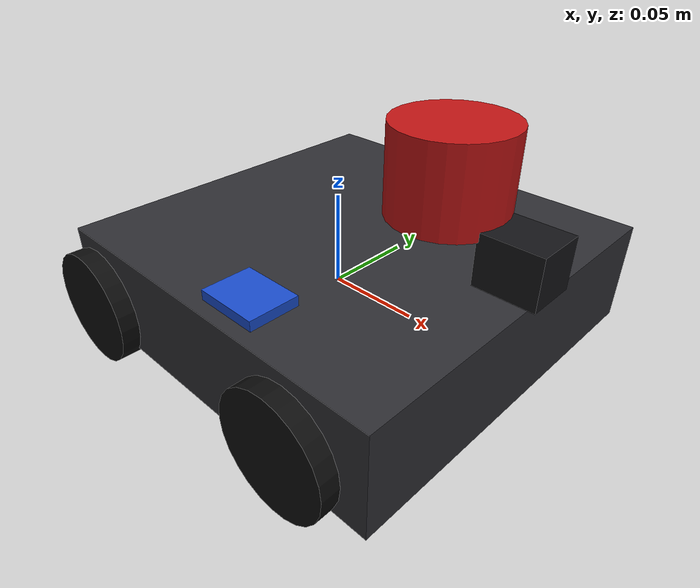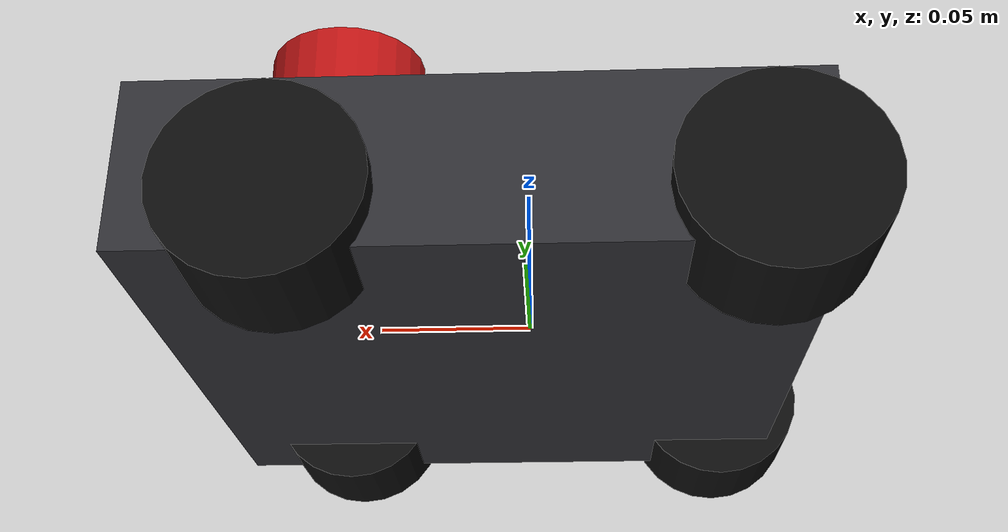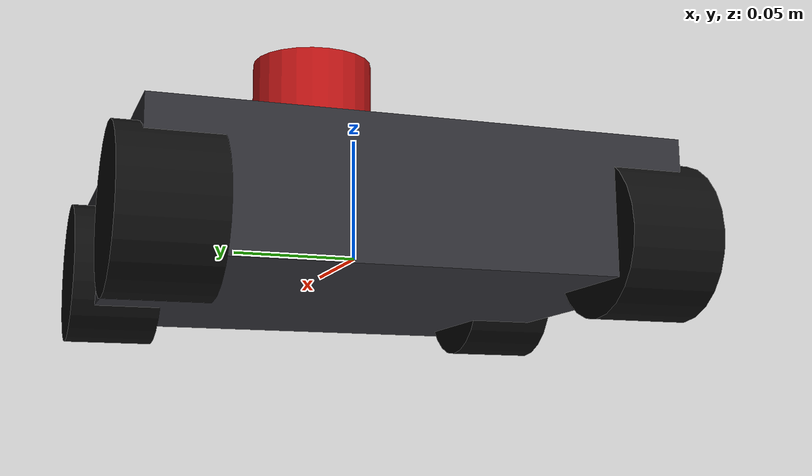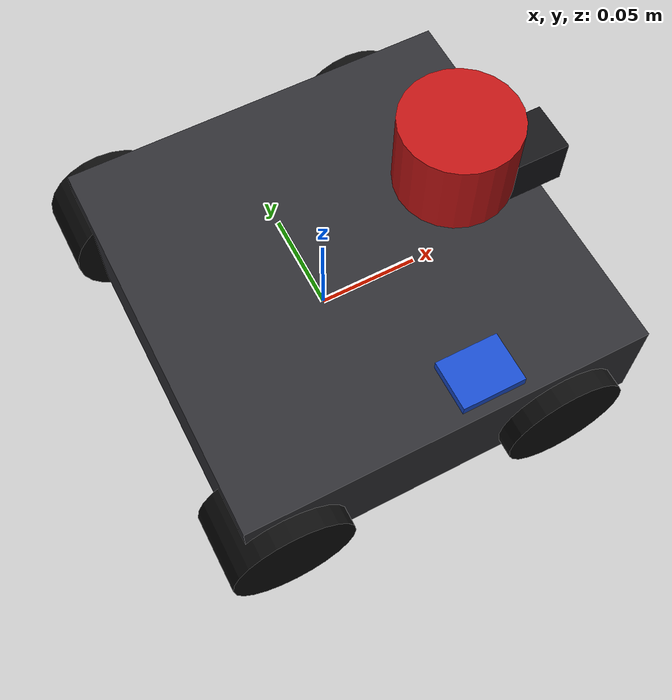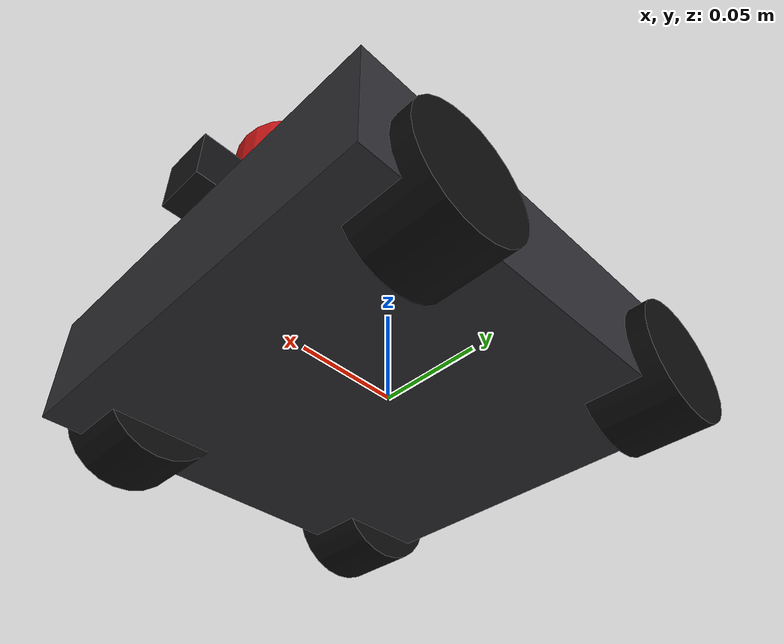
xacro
<?xml version="1.0"?>
<robot name="rover" xmlns:xacro="http://www.ros.org/wiki/xacro">
  <!--
    Dimensions and poses are derived from "malyi rover V1.2.step".
    base_link is centered between the four wheel axles. ROS axes are
    x forward, y left and z up.
  -->
  <xacro:arg name="wheel_radius" default="0.03"/>
  <xacro:arg name="wheel_width" default="0.037"/>
  <xacro:arg name="wheelbase" default="0.13961"/>
  <xacro:arg name="track_width" default="0.181"/>
  <xacro:arg name="simulation" default="false"/>
  <xacro:arg name="right_wheel_axis_y" default="-1"/>
  <xacro:arg name="chassis_length" default="0.2006"/>
  <xacro:arg name="chassis_width" default="0.1990"/>
  <xacro:arg name="chassis_height" default="0.0532"/>
  <xacro:arg name="chassis_x" default="0.0125"/>
  <xacro:arg name="chassis_y" default="0.0"/>
  <xacro:arg name="chassis_z" default="0.0096"/>
  <xacro:arg name="imu_x" default="0.0332"/>
  <xacro:arg name="imu_y" default="-0.0837"/>
  <xacro:arg name="imu_z" default="0.0435"/>
  <xacro:arg name="imu_roll" default="0.0"/>
  <xacro:arg name="imu_pitch" default="0.0"/>
  <xacro:arg name="imu_yaw" default="1.57079632679"/>
  <xacro:arg name="lidar_x" default="0.0662"/>
  <xacro:arg name="lidar_y" default="0.0"/>
  <xacro:arg name="lidar_z" default="0.0837"/>
  <xacro:arg name="lidar_roll" default="0.0"/>
  <xacro:arg name="lidar_pitch" default="0.0"/>
  <xacro:arg name="lidar_yaw" default="0.0"/>
  <xacro:arg name="camera_x" default="0.105"/>
  <xacro:arg name="camera_y" default="0.0"/>
  <xacro:arg name="camera_z" default="0.055"/>
  <xacro:arg name="camera_roll" default="0.0"/>
  <xacro:arg name="camera_pitch" default="0.0"/>
  <xacro:arg name="camera_yaw" default="0.0"/>

  <xacro:property name="r" value="$(arg wheel_radius)"/>
  <xacro:property name="ww" value="$(arg wheel_width)"/>
  <xacro:property name="wb" value="$(arg wheelbase)"/>
  <xacro:property name="tw" value="$(arg track_width)"/>
  <xacro:property name="cl" value="$(arg chassis_length)"/>
  <xacro:property name="cw" value="$(arg chassis_width)"/>
  <xacro:property name="ch" value="$(arg chassis_height)"/>

  <link name="base_link">
    <visual>
      <origin xyz="$(arg chassis_x) $(arg chassis_y) $(arg chassis_z)"/>
      <geometry><box size="${cl} ${cw} ${ch}"/></geometry>
      <material name="dark"><color rgba="0.18 0.18 0.20 1"/></material>
    </visual>
    <collision>
      <origin xyz="$(arg chassis_x) $(arg chassis_y) $(arg chassis_z)"/>
      <geometry><box size="${cl} ${cw} ${ch}"/></geometry>
    </collision>
    <inertial>
      <mass value="3.0"/>
      <origin xyz="$(arg chassis_x) $(arg chassis_y) $(arg chassis_z)"/>
      <inertia ixx="0.0106" ixy="0" ixz="0" iyy="0.0108" iyz="0" izz="0.0200"/>
    </inertial>
  </link>

  <xacro:macro name="wheel" params="name x y axis_y">
    <link name="${name}_wheel_link">
      <visual>
        <origin rpy="1.57079632679 0 0"/>
        <geometry><cylinder radius="${r}" length="${ww}"/></geometry>
        <material name="rubber"><color rgba="0.05 0.05 0.05 1"/></material>
      </visual>
      <collision>
        <xacro:if value="$(arg simulation)">
          <!-- The directed friction model needs a point-like contact patch. -->
          <geometry><sphere radius="${r}"/></geometry>
        </xacro:if>
        <xacro:unless value="$(arg simulation)">
          <origin rpy="1.57079632679 0 0"/>
          <geometry><cylinder radius="${r}" length="${ww}"/></geometry>
        </xacro:unless>
      </collision>
      <inertial>
        <mass value="0.15"/>
        <inertia ixx="0.000051" ixy="0" ixz="0" iyy="0.000068" iyz="0" izz="0.000051"/>
      </inertial>
    </link>
    <joint name="${name}_wheel_joint" type="continuous">
      <parent link="base_link"/>
      <child link="${name}_wheel_link"/>
      <origin xyz="${x} ${y} 0"/>
      <axis xyz="0 ${axis_y} 0"/>
    </joint>
  </xacro:macro>

  <xacro:wheel name="front_left"  x="${ wb/2}" y="${ tw/2}" axis_y="1"/>
  <xacro:wheel name="front_right" x="${ wb/2}" y="${-tw/2}" axis_y="$(arg right_wheel_axis_y)"/>
  <xacro:wheel name="rear_left"   x="${-wb/2}" y="${ tw/2}" axis_y="1"/>
  <xacro:wheel name="rear_right"  x="${-wb/2}" y="${-tw/2}" axis_y="$(arg right_wheel_axis_y)"/>

  <link name="imu_link">
    <visual>
      <geometry><box size="0.0246 0.0310 0.0049"/></geometry>
      <material name="imu_blue"><color rgba="0.1 0.3 0.8 1"/></material>
    </visual>
    <collision>
      <geometry><box size="0.0246 0.0310 0.0049"/></geometry>
    </collision>
    <inertial>
      <mass value="0.015"/>
      <inertia ixx="0.00000123" ixy="0" ixz="0"
               iyy="0.00000079" iyz="0" izz="0.00000196"/>
    </inertial>
  </link>
  <joint name="imu_joint" type="fixed">
    <parent link="base_link"/>
    <child link="imu_link"/>
    <origin xyz="$(arg imu_x) $(arg imu_y) $(arg imu_z)"
            rpy="$(arg imu_roll) $(arg imu_pitch) $(arg imu_yaw)"/>
  </joint>

  <link name="lidar_link">
    <visual>
      <geometry><cylinder radius="0.028" length="0.0414"/></geometry>
      <material name="lidar_red"><color rgba="0.75 0.08 0.08 1"/></material>
    </visual>
    <collision>
      <geometry><cylinder radius="0.028" length="0.0414"/></geometry>
    </collision>
    <inertial>
      <mass value="0.17"/>
      <inertia ixx="0.000057" ixy="0" ixz="0"
               iyy="0.000057" iyz="0" izz="0.000067"/>
    </inertial>
  </link>
  <joint name="lidar_joint" type="fixed">
    <parent link="base_link"/>
    <child link="lidar_link"/>
    <origin xyz="$(arg lidar_x) $(arg lidar_y) $(arg lidar_z)"
            rpy="$(arg lidar_roll) $(arg lidar_pitch) $(arg lidar_yaw)"/>
  </joint>

  <link name="camera_link">
    <visual>
      <geometry><box size="0.030 0.025 0.025"/></geometry>
      <material name="camera_black"><color rgba="0.08 0.08 0.09 1"/></material>
    </visual>
    <collision>
      <geometry><box size="0.030 0.025 0.025"/></geometry>
    </collision>
    <inertial>
      <mass value="0.025"/>
      <inertia ixx="0.0000026" ixy="0" ixz="0"
               iyy="0.0000032" iyz="0" izz="0.0000026"/>
    </inertial>
  </link>
  <joint name="camera_joint" type="fixed">
    <parent link="base_link"/>
    <child link="camera_link"/>
    <origin xyz="$(arg camera_x) $(arg camera_y) $(arg camera_z)"
            rpy="$(arg camera_roll) $(arg camera_pitch) $(arg camera_yaw)"/>
  </joint>

  <link name="camera_optical_frame"/>
  <joint name="camera_optical_joint" type="fixed">
    <parent link="camera_link"/>
    <child link="camera_optical_frame"/>
    <!-- ROS optical frames use z forward, x right and y down. -->
    <origin xyz="0 0 0" rpy="-1.57079632679 0 -1.57079632679"/>
  </joint>
</robot>
